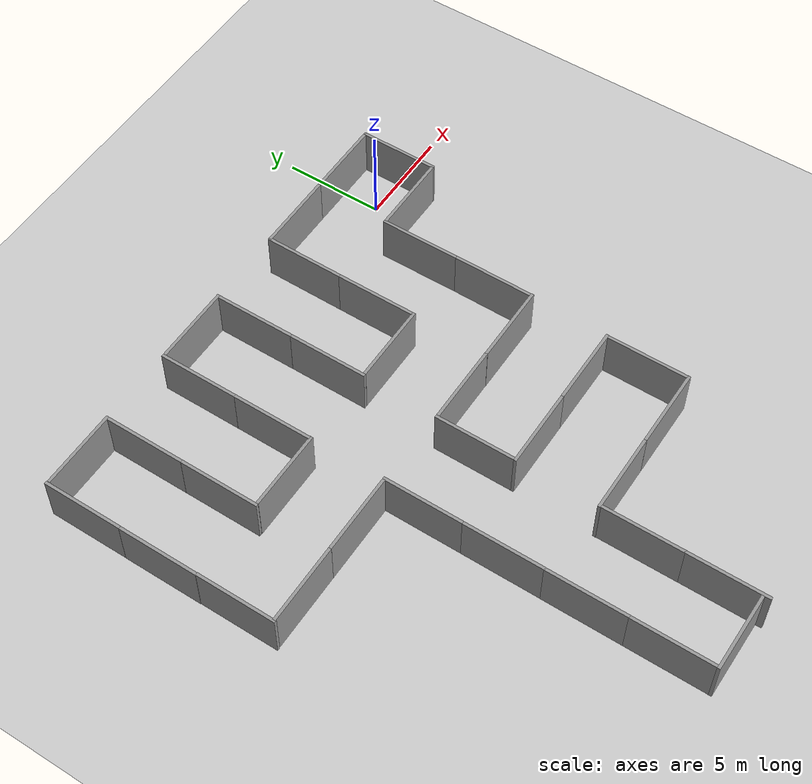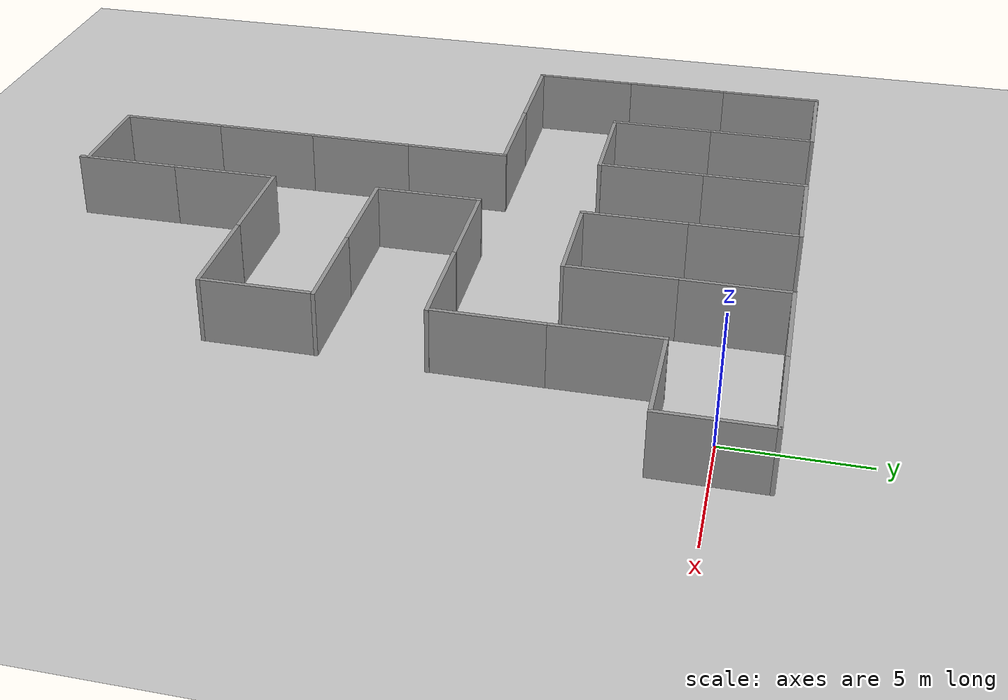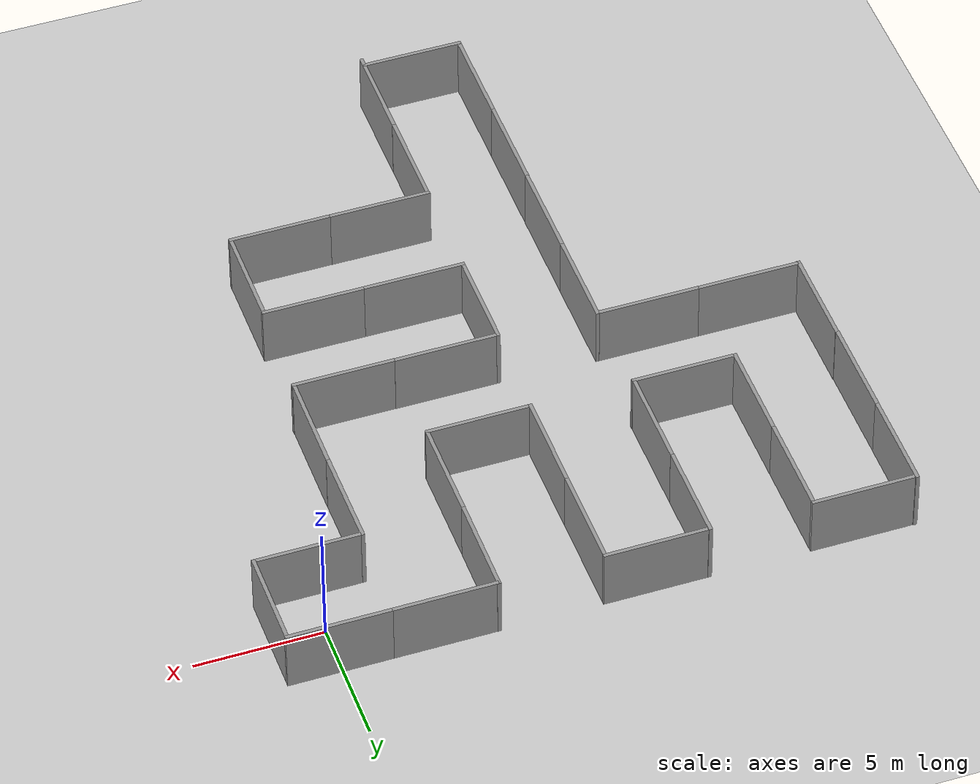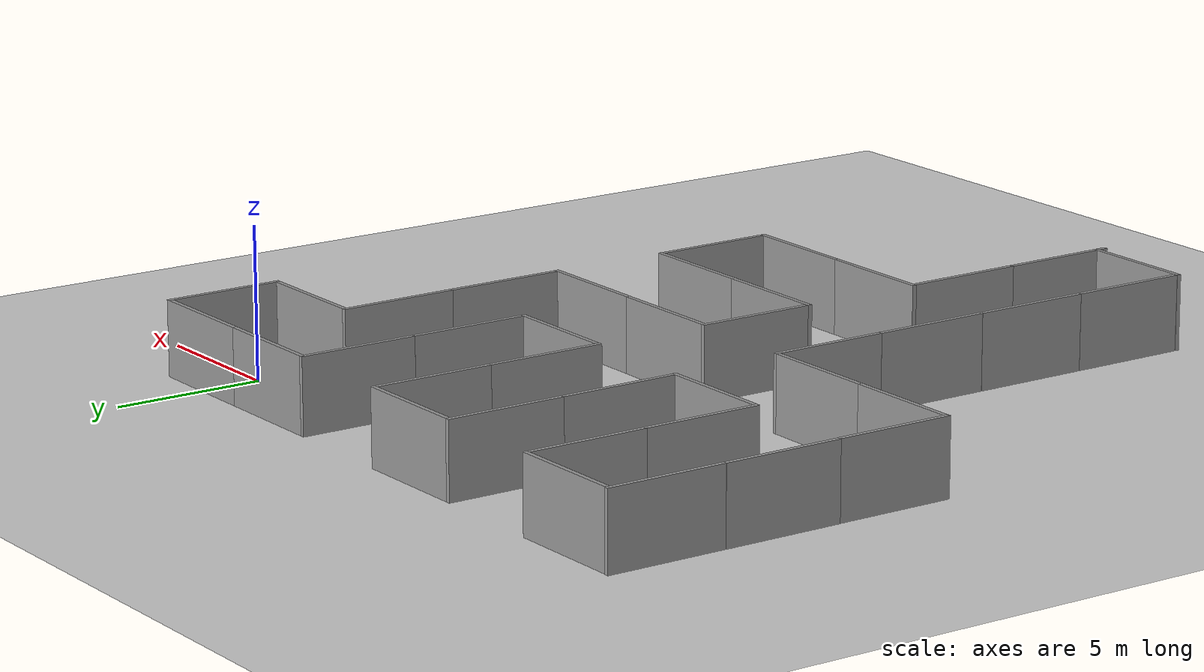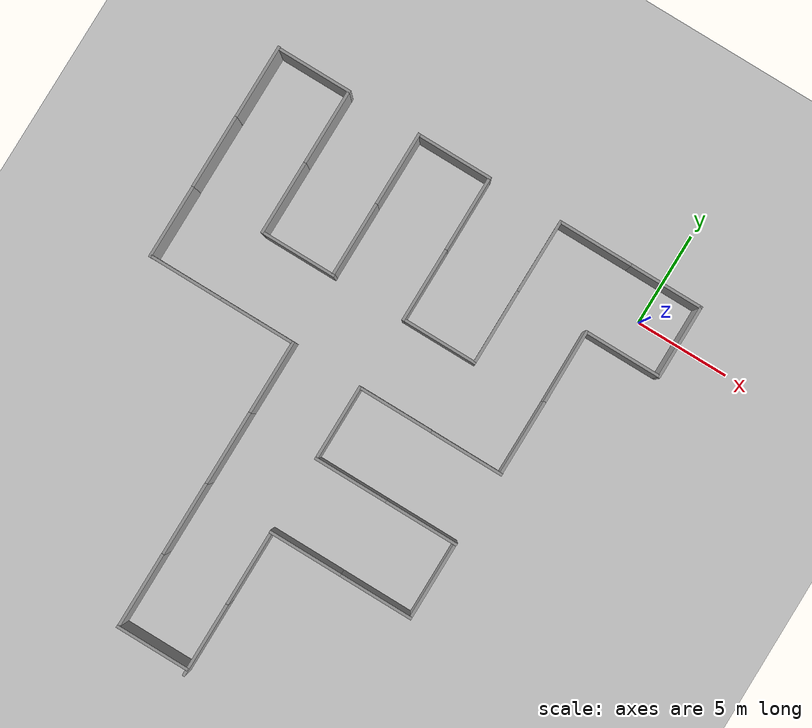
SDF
<sdf version="1.6">
 <world name="default">
  <light name="sun" type="directional">
   <pose>0 0 10 0 -0 0</pose>
   <diffuse>0.8 0.8 0.8 1</diffuse>
   <specular>0.2 0.2 0.2 1</specular>
   <attenuation>
    <range>1000</range>
    <constant>0.9</constant>
    <linear>0.01</linear>
    <quadratic>0.001</quadratic>
   </attenuation>
   <direction>-0.5 0.1 -0.9</direction>
  </light>
  <model name="ground_plane">
   <pose>0 0 0 0 0 -1.56912</pose>
   <static>1</static>
   <link name="link">
    <collision name="collision">
     <geometry><plane><normal>0 0 1</normal><size>100 100</size></plane></geometry>
     <surface>
      <contact><collide_bitmask>65535</collide_bitmask></contact>
      <friction><ode><mu>100</mu><mu2>50</mu2></ode></friction>
     </surface>
    </collision>
    <visual name="visual">
     <cast_shadows>0</cast_shadows>
     <geometry><plane><normal>0 0 1</normal><size>100 100</size></plane></geometry>
     <material>
      <script><uri>file://media/materials/scripts/gazebo.material</uri><name>Gazebo/Grey</name></script>
     </material>
    </visual>
   </link>
  </model>
  <gravity>0 0 -9.8</gravity>
  <magnetic_field>6e-06 2.3e-05 -4.2e-05</magnetic_field>
  <atmosphere type="adiabatic"/>
  <physics name="default_physics" default="0" type="ode">
   <max_step_size>0.001</max_step_size>
   <real_time_factor>1</real_time_factor>
   <real_time_update_rate>1000</real_time_update_rate>
  </physics>
  <scene><ambient>0.4 0.4 0.4 1</ambient><background>0.7 0.7 0.7 1</background><shadows>1</shadows></scene>
  <audio><device>default</device></audio>
  <spherical_coordinates>
   <surface_model>EARTH_WGS84</surface_model>
   <latitude_deg>0</latitude_deg>
   <longitude_deg>0</longitude_deg>
   <elevation>0</elevation>
   <heading_deg>0</heading_deg>
  </spherical_coordinates>
  <model name="Y">
   <pose>-0.025508 -1.94415 0 0 -0 0</pose>
   <link name="Wall_0">
    <collision name="Wall_0_Collision">
     <geometry><box><size>4 0.15 2.5</size></box></geometry>
     <pose>0 0 1.25 0 -0 0</pose>
    </collision>
    <visual name="Wall_0_Visual">
     <pose>0 0 1.25 0 -0 0</pose>
     <geometry><box><size>4 0.15 2.5</size></box></geometry>
     <material>
      <script><uri>file://media/materials/scripts/gazebo.material</uri><name>Gazebo/Grey</name></script>
      <ambient>1 1 1 1</ambient>
     </material>
     <meta><layer>0</layer></meta>
    </visual>
   </link>
   <static>1</static>
  </model>
  <model name="Y_0">
   <pose>2.00538 -0.018061 0 0 -0 1.57462</pose>
   <link name="Wall_0">
    <collision name="Wall_0_Collision">
     <geometry><box><size>4 0.15 2.5</size></box></geometry>
     <pose>0 0 1.25 0 -0 0</pose>
    </collision>
    <visual name="Wall_0_Visual">
     <pose>0 0 1.25 0 -0 0</pose>
     <geometry><box><size>4 0.15 2.5</size></box></geometry>
     <material>
      <script><uri>file://media/materials/scripts/gazebo.material</uri><name>Gazebo/Grey</name></script>
      <ambient>1 1 1 1</ambient>
     </material>
     <meta><layer>0</layer></meta>
    </visual>
   </link>
   <static>1</static>
  </model>
  <model name="Y_1">
   <pose>0.076105 1.93775 0 0 -0 0</pose>
   <link name="Wall_0">
    <collision name="Wall_0_Collision">
     <geometry><box><size>4 0.15 2.5</size></box></geometry>
     <pose>0 0 1.25 0 -0 0</pose>
    </collision>
    <visual name="Wall_0_Visual">
     <pose>0 0 1.25 0 -0 0</pose>
     <geometry><box><size>4 0.15 2.5</size></box></geometry>
     <material>
      <script><uri>file://media/materials/scripts/gazebo.material</uri><name>Gazebo/Grey</name></script>
      <ambient>1 1 1 1</ambient>
     </material>
     <meta><layer>0</layer></meta>
    </visual>
   </link>
   <static>1</static>
  </model>
  <model name="Y_2">
   <pose>-3.91376 1.93732 0 0 -0 0</pose>
   <link name="Wall_0">
    <collision name="Wall_0_Collision">
     <geometry><box><size>4 0.15 2.5</size></box></geometry>
     <pose>0 0 1.25 0 -0 0</pose>
    </collision>
    <visual name="Wall_0_Visual">
     <pose>0 0 1.25 0 -0 0</pose>
     <geometry><box><size>4 0.15 2.5</size></box></geometry>
     <material>
      <script><uri>file://media/materials/scripts/gazebo.material</uri><name>Gazebo/Grey</name></script>
      <ambient>1 1 1 1</ambient>
     </material>
     <meta><layer>0</layer></meta>
    </visual>
   </link>
   <static>1</static>
  </model>
  <model name="Y_3">
   <pose>-2.06061 -3.86822 0 0 -0 1.57913</pose>
   <link name="Wall_0">
    <collision name="Wall_0_Collision">
     <geometry><box><size>4 0.15 2.5</size></box></geometry>
     <pose>0 0 1.25 0 -0 0</pose>
    </collision>
    <visual name="Wall_0_Visual">
     <pose>0 0 1.25 0 -0 0</pose>
     <geometry><box><size>4 0.15 2.5</size></box></geometry>
     <material>
      <script><uri>file://media/materials/scripts/gazebo.material</uri><name>Gazebo/Grey</name></script>
      <ambient>1 1 1 1</ambient>
     </material>
     <meta><layer>0</layer></meta>
    </visual>
   </link>
   <static>1</static>
  </model>
  <model name="Y_4">
   <pose>-2.04239 -7.85799 0 0 -0 1.56991</pose>
   <link name="Wall_0">
    <collision name="Wall_0_Collision">
     <geometry><box><size>4 0.15 2.5</size></box></geometry>
     <pose>0 0 1.25 0 -0 0</pose>
    </collision>
    <visual name="Wall_0_Visual">
     <pose>0 0 1.25 0 -0 0</pose>
     <geometry><box><size>4 0.15 2.5</size></box></geometry>
     <material>
      <script><uri>file://media/materials/scripts/gazebo.material</uri><name>Gazebo/Grey</name></script>
      <ambient>1 1 1 1</ambient>
     </material>
     <meta><layer>0</layer></meta>
    </visual>
   </link>
   <static>1</static>
  </model>
  <model name="Y_5">
   <pose>-3.95318 -9.92776 0 0 -0 0</pose>
   <link name="Wall_0">
    <collision name="Wall_0_Collision">
     <geometry><box><size>4 0.15 2.5</size></box></geometry>
     <pose>0 0 1.25 0 -0 0</pose>
    </collision>
    <visual name="Wall_0_Visual">
     <pose>0 0 1.25 0 -0 0</pose>
     <geometry><box><size>4 0.15 2.5</size></box></geometry>
     <material>
      <script><uri>file://media/materials/scripts/gazebo.material</uri><name>Gazebo/Grey</name></script>
      <ambient>1 1 1 1</ambient>
     </material>
     <meta><layer>0</layer></meta>
    </visual>
   </link>
   <static>1</static>
  </model>
  <model name="Y_6">
   <pose>-5.91089 0.016684 0 0 -0 1.56963</pose>
   <link name="Wall_0">
    <collision name="Wall_0_Collision">
     <geometry><box><size>4 0.15 2.5</size></box></geometry>
     <pose>0 0 1.25 0 -0 0</pose>
    </collision>
    <visual name="Wall_0_Visual">
     <pose>0 0 1.25 0 -0 0</pose>
     <geometry><box><size>4 0.15 2.5</size></box></geometry>
     <material>
      <script><uri>file://media/materials/scripts/gazebo.material</uri><name>Gazebo/Grey</name></script>
      <ambient>1 1 1 1</ambient>
     </material>
     <meta><layer>0</layer></meta>
    </visual>
   </link>
   <static>1</static>
  </model>
  <model name="Y_7">
   <pose>-5.90785 -3.97955 0 0 -0 1.57405</pose>
   <link name="Wall_0">
    <collision name="Wall_0_Collision">
     <geometry><box><size>4 0.15 2.5</size></box></geometry>
     <pose>0 0 1.25 0 -0 0</pose>
    </collision>
    <visual name="Wall_0_Visual">
     <pose>0 0 1.25 0 -0 0</pose>
     <geometry><box><size>4 0.15 2.5</size></box></geometry>
     <material>
      <script><uri>file://media/materials/scripts/gazebo.material</uri><name>Gazebo/Grey</name></script>
      <ambient>1 1 1 1</ambient>
     </material>
     <meta><layer>0</layer></meta>
    </visual>
   </link>
   <static>1</static>
  </model>
  <model name="Y_8">
   <pose>-7.83014 -6.01942 0 0 -0 0</pose>
   <link name="Wall_0">
    <collision name="Wall_0_Collision">
     <geometry><box><size>4 0.15 2.5</size></box></geometry>
     <pose>0 0 1.25 0 -0 0</pose>
    </collision>
    <visual name="Wall_0_Visual">
     <pose>0 0 1.25 0 -0 0</pose>
     <geometry><box><size>4 0.15 2.5</size></box></geometry>
     <material>
      <script><uri>file://media/materials/scripts/gazebo.material</uri><name>Gazebo/Grey</name></script>
      <ambient>1 1 1 1</ambient>
     </material>
     <meta><layer>0</layer></meta>
    </visual>
   </link>
   <static>1</static>
  </model>
  <model name="Y_9">
   <pose>-7.9297 -9.92021 0 0 -0 0</pose>
   <link name="Wall_0">
    <collision name="Wall_0_Collision">
     <geometry><box><size>4 0.15 2.5</size></box></geometry>
     <pose>0 0 1.25 0 -0 0</pose>
    </collision>
    <visual name="Wall_0_Visual">
     <pose>0 0 1.25 0 -0 0</pose>
     <geometry><box><size>4 0.15 2.5</size></box></geometry>
     <material>
      <script><uri>file://media/materials/scripts/gazebo.material</uri><name>Gazebo/Grey</name></script>
      <ambient>1 1 1 1</ambient>
     </material>
     <meta><layer>0</layer></meta>
    </visual>
   </link>
   <static>1</static>
  </model>
  <model name="Y_10">
   <pose>-9.91101 -4.09349 0 0 0 -1.56912</pose>
   <link name="Wall_0">
    <collision name="Wall_0_Collision">
     <geometry><box><size>4 0.15 2.5</size></box></geometry>
     <pose>0 0 1.25 0 -0 0</pose>
    </collision>
    <visual name="Wall_0_Visual">
     <pose>0 0 1.25 0 -0 0</pose>
     <geometry><box><size>4 0.15 2.5</size></box></geometry>
     <material>
      <script><uri>file://media/materials/scripts/gazebo.material</uri><name>Gazebo/Grey</name></script>
      <ambient>1 1 1 1</ambient>
     </material>
     <meta><layer>0</layer></meta>
    </visual>
   </link>
   <static>1</static>
  </model>
  <model name="Y_11">
   <pose>-9.92476 -0.101321 0 0 -0 1.57507</pose>
   <link name="Wall_0">
    <collision name="Wall_0_Collision">
     <geometry><box><size>4 0.15 2.5</size></box></geometry>
     <pose>0 0 1.25 0 -0 0</pose>
    </collision>
    <visual name="Wall_0_Visual">
     <pose>0 0 1.25 0 -0 0</pose>
     <geometry><box><size>4 0.15 2.5</size></box></geometry>
     <material>
      <script><uri>file://media/materials/scripts/gazebo.material</uri><name>Gazebo/Grey</name></script>
      <ambient>1 1 1 1</ambient>
     </material>
     <meta><layer>0</layer></meta>
    </visual>
   </link>
   <static>1</static>
  </model>
  <model name="Y_12">
   <pose>-11.8636 1.96453 0 0 -0 0</pose>
   <link name="Wall_0">
    <collision name="Wall_0_Collision">
     <geometry><box><size>4 0.15 2.5</size></box></geometry>
     <pose>0 0 1.25 0 -0 0</pose>
    </collision>
    <visual name="Wall_0_Visual">
     <pose>0 0 1.25 0 -0 0</pose>
     <geometry><box><size>4 0.15 2.5</size></box></geometry>
     <material>
      <script><uri>file://media/materials/scripts/gazebo.material</uri><name>Gazebo/Grey</name></script>
      <ambient>1 1 1 1</ambient>
     </material>
     <meta><layer>0</layer></meta>
    </visual>
   </link>
   <static>1</static>
  </model>
  <model name="Y_13">
   <pose>-13.9405 0.044504 0 0 0 -1.56912</pose>
   <link name="Wall_0">
    <collision name="Wall_0_Collision">
     <geometry><box><size>4 0.15 2.5</size></box></geometry>
     <pose>0 0 1.25 0 -0 0</pose>
    </collision>
    <visual name="Wall_0_Visual">
     <pose>0 0 1.25 0 -0 0</pose>
     <geometry><box><size>4 0.15 2.5</size></box></geometry>
     <material>
      <script><uri>file://media/materials/scripts/gazebo.material</uri><name>Gazebo/Grey</name></script>
      <ambient>1 1 1 1</ambient>
     </material>
     <meta><layer>0</layer></meta>
    </visual>
   </link>
   <static>1</static>
  </model>
  <model name="Y_14">
   <pose>-13.9321 -3.94824 0 0 0 -1.56912</pose>
   <link name="Wall_0">
    <collision name="Wall_0_Collision">
     <geometry><box><size>4 0.15 2.5</size></box></geometry>
     <pose>0 0 1.25 0 -0 0</pose>
    </collision>
    <visual name="Wall_0_Visual">
     <pose>0 0 1.25 0 -0 0</pose>
     <geometry><box><size>4 0.15 2.5</size></box></geometry>
     <material>
      <script><uri>file://media/materials/scripts/gazebo.material</uri><name>Gazebo/Grey</name></script>
      <ambient>1 1 1 1</ambient>
     </material>
     <meta><layer>0</layer></meta>
    </visual>
   </link>
   <static>1</static>
  </model>
  <model name="Y_15">
   <pose>-15.8399 -5.9871 0 0 -0 0</pose>
   <link name="Wall_0">
    <collision name="Wall_0_Collision">
     <geometry><box><size>4 0.15 2.5</size></box></geometry>
     <pose>0 0 1.25 0 -0 0</pose>
    </collision>
    <visual name="Wall_0_Visual">
     <pose>0 0 1.25 0 -0 0</pose>
     <geometry><box><size>4 0.15 2.5</size></box></geometry>
     <material>
      <script><uri>file://media/materials/scripts/gazebo.material</uri><name>Gazebo/Grey</name></script>
      <ambient>1 1 1 1</ambient>
     </material>
     <meta><layer>0</layer></meta>
    </visual>
   </link>
   <static>1</static>
  </model>
  <model name="Y_16">
   <pose>-17.9082 -4.05336 0 0 0 -1.56912</pose>
   <link name="Wall_0">
    <collision name="Wall_0_Collision">
     <geometry><box><size>4 0.15 2.5</size></box></geometry>
     <pose>0 0 1.25 0 -0 0</pose>
    </collision>
    <visual name="Wall_0_Visual">
     <pose>0 0 1.25 0 -0 0</pose>
     <geometry><box><size>4 0.15 2.5</size></box></geometry>
     <material>
      <script><uri>file://media/materials/scripts/gazebo.material</uri><name>Gazebo/Grey</name></script>
      <ambient>1 1 1 1</ambient>
     </material>
     <meta><layer>0</layer></meta>
    </visual>
   </link>
   <static>1</static>
  </model>
  <model name="Y_17">
   <pose>-17.9158 -0.065441 0 0 0 -1.56912</pose>
   <link name="Wall_0">
    <collision name="Wall_0_Collision">
     <geometry><box><size>4 0.15 2.5</size></box></geometry>
     <pose>0 0 1.25 0 -0 0</pose>
    </collision>
    <visual name="Wall_0_Visual">
     <pose>0 0 1.25 0 -0 0</pose>
     <geometry><box><size>4 0.15 2.5</size></box></geometry>
     <material>
      <script><uri>file://media/materials/scripts/gazebo.material</uri><name>Gazebo/Grey</name></script>
      <ambient>1 1 1 1</ambient>
     </material>
     <meta><layer>0</layer></meta>
    </visual>
   </link>
   <static>1</static>
  </model>
  <model name="Y_18">
   <pose>-19.8436 2.00016 0 0 -0 0</pose>
   <link name="Wall_0">
    <collision name="Wall_0_Collision">
     <geometry><box><size>4 0.15 2.5</size></box></geometry>
     <pose>0 0 1.25 0 -0 0</pose>
    </collision>
    <visual name="Wall_0_Visual">
     <pose>0 0 1.25 0 -0 0</pose>
     <geometry><box><size>4 0.15 2.5</size></box></geometry>
     <material>
      <script><uri>file://media/materials/scripts/gazebo.material</uri><name>Gazebo/Grey</name></script>
      <ambient>1 1 1 1</ambient>
     </material>
     <meta><layer>0</layer></meta>
    </visual>
   </link>
   <static>1</static>
  </model>
  <model name="Y_19">
   <pose>-19.8745 -9.77499 0 0 -0 0</pose>
   <link name="Wall_0">
    <collision name="Wall_0_Collision">
     <geometry><box><size>4 0.15 2.5</size></box></geometry>
     <pose>0 0 1.25 0 -0 0</pose>
    </collision>
    <visual name="Wall_0_Visual">
     <pose>0 0 1.25 0 -0 0</pose>
     <geometry><box><size>4 0.15 2.5</size></box></geometry>
     <material>
      <script><uri>file://media/materials/scripts/gazebo.material</uri><name>Gazebo/Grey</name></script>
      <ambient>1 1 1 1</ambient>
     </material>
     <meta><layer>0</layer></meta>
    </visual>
   </link>
   <static>1</static>
  </model>
  <model name="Y_20">
   <pose>-21.9246 0.100817 0 0 0 -1.56912</pose>
   <link name="Wall_0">
    <collision name="Wall_0_Collision">
     <geometry><box><size>4 0.15 2.5</size></box></geometry>
     <pose>0 0 1.25 0 -0 0</pose>
    </collision>
    <visual name="Wall_0_Visual">
     <pose>0 0 1.25 0 -0 0</pose>
     <geometry><box><size>4 0.15 2.5</size></box></geometry>
     <material>
      <script><uri>file://media/materials/scripts/gazebo.material</uri><name>Gazebo/Grey</name></script>
      <ambient>1 1 1 1</ambient>
     </material>
     <meta><layer>0</layer></meta>
    </visual>
   </link>
   <static>1</static>
  </model>
  <model name="Y_21">
   <pose>-21.9246 -3.89502 0 0 0 -1.56912</pose>
   <link name="Wall_0">
    <collision name="Wall_0_Collision">
     <geometry><box><size>4 0.15 2.5</size></box></geometry>
     <pose>0 0 1.25 0 -0 0</pose>
    </collision>
    <visual name="Wall_0_Visual">
     <pose>0 0 1.25 0 -0 0</pose>
     <geometry><box><size>4 0.15 2.5</size></box></geometry>
     <material>
      <script><uri>file://media/materials/scripts/gazebo.material</uri><name>Gazebo/Grey</name></script>
      <ambient>1 1 1 1</ambient>
     </material>
     <meta><layer>0</layer></meta>
    </visual>
   </link>
   <static>1</static>
  </model>
  <model name="Y_23">
   <pose>-21.9044 -7.86349 0 0 0 -1.56912</pose>
   <link name="Wall_0">
    <collision name="Wall_0_Collision">
     <geometry><box><size>4 0.15 2.5</size></box></geometry>
     <pose>0 0 1.25 0 -0 0</pose>
    </collision>
    <visual name="Wall_0_Visual">
     <pose>0 0 1.25 0 -0 0</pose>
     <geometry><box><size>4 0.15 2.5</size></box></geometry>
     <material>
      <script><uri>file://media/materials/scripts/gazebo.material</uri><name>Gazebo/Grey</name></script>
      <ambient>1 1 1 1</ambient>
     </material>
     <meta><layer>0</layer></meta>
    </visual>
   </link>
   <static>1</static>
  </model>
  <model name="Y_22">
   <pose>-15.9159 -9.77548 0 0 -0 0</pose>
   <link name="Wall_0">
    <collision name="Wall_0_Collision">
     <geometry><box><size>4 0.15 2.5</size></box></geometry>
     <pose>0 0 1.25 0 -0 0</pose>
    </collision>
    <visual name="Wall_0_Visual">
     <pose>0 0 1.25 0 -0 0</pose>
     <geometry><box><size>4 0.15 2.5</size></box></geometry>
     <material>
      <script><uri>file://media/materials/scripts/gazebo.material</uri><name>Gazebo/Grey</name></script>
      <ambient>1 1 1 1</ambient>
     </material>
     <meta><layer>0</layer></meta>
    </visual>
   </link>
   <static>1</static>
  </model>
  <model name="Y_24">
   <pose>-9.98168 -11.8441 0 0 0 -1.56912</pose>
   <link name="Wall_0">
    <collision name="Wall_0_Collision">
     <geometry><box><size>4 0.15 2.5</size></box></geometry>
     <pose>0 0 1.25 0 -0 0</pose>
    </collision>
    <visual name="Wall_0_Visual">
     <pose>0 0 1.25 0 -0 0</pose>
     <geometry><box><size>4 0.15 2.5</size></box></geometry>
     <material>
      <script><uri>file://media/materials/scripts/gazebo.material</uri><name>Gazebo/Grey</name></script>
      <ambient>1 1 1 1</ambient>
     </material>
     <meta><layer>0</layer></meta>
    </visual>
   </link>
   <static>1</static>
  </model>
  <model name="Y_25">
   <pose>-13.8547 -11.7025 0 0 0 -1.56912</pose>
   <link name="Wall_0">
    <collision name="Wall_0_Collision">
     <geometry><box><size>4 0.15 2.5</size></box></geometry>
     <pose>0 0 1.25 0 -0 0</pose>
    </collision>
    <visual name="Wall_0_Visual">
     <pose>0 0 1.25 0 -0 0</pose>
     <geometry><box><size>4 0.15 2.5</size></box></geometry>
     <material>
      <script><uri>file://media/materials/scripts/gazebo.material</uri><name>Gazebo/Grey</name></script>
      <ambient>1 1 1 1</ambient>
     </material>
     <meta><layer>0</layer></meta>
    </visual>
   </link>
   <static>1</static>
  </model>
  <model name="Y_26">
   <pose>-8.05241 -13.9177 0 0 -0 0</pose>
   <link name="Wall_0">
    <collision name="Wall_0_Collision">
     <geometry><box><size>4 0.15 2.5</size></box></geometry>
     <pose>0 0 1.25 0 -0 0</pose>
    </collision>
    <visual name="Wall_0_Visual">
     <pose>0 0 1.25 0 -0 0</pose>
     <geometry><box><size>4 0.15 2.5</size></box></geometry>
     <material>
      <script><uri>file://media/materials/scripts/gazebo.material</uri><name>Gazebo/Grey</name></script>
      <ambient>1 1 1 1</ambient>
     </material>
     <meta><layer>0</layer></meta>
    </visual>
   </link>
   <static>1</static>
  </model>
  <model name="Y_27">
   <pose>-4.06253 -13.918 0 0 -0 0</pose>
   <link name="Wall_0">
    <collision name="Wall_0_Collision">
     <geometry><box><size>4 0.15 2.5</size></box></geometry>
     <pose>0 0 1.25 0 -0 0</pose>
    </collision>
    <visual name="Wall_0_Visual">
     <pose>0 0 1.25 0 -0 0</pose>
     <geometry><box><size>4 0.15 2.5</size></box></geometry>
     <material>
      <script><uri>file://media/materials/scripts/gazebo.material</uri><name>Gazebo/Grey</name></script>
      <ambient>1 1 1 1</ambient>
     </material>
     <meta><layer>0</layer></meta>
    </visual>
   </link>
   <static>1</static>
  </model>
  <model name="Y_28">
   <pose>-2.14282 -15.9949 0 0 0 -1.56912</pose>
   <link name="Wall_0">
    <collision name="Wall_0_Collision">
     <geometry><box><size>4 0.15 2.5</size></box></geometry>
     <pose>0 0 1.25 0 -0 0</pose>
    </collision>
    <visual name="Wall_0_Visual">
     <pose>0 0 1.25 0 -0 0</pose>
     <geometry><box><size>4 0.15 2.5</size></box></geometry>
     <material>
      <script><uri>file://media/materials/scripts/gazebo.material</uri><name>Gazebo/Grey</name></script>
      <ambient>1 1 1 1</ambient>
     </material>
     <meta><layer>0</layer></meta>
    </visual>
   </link>
   <static>1</static>
  </model>
  <model name="Y_29">
   <pose>-4.06243 -18.0552 0 0 -0 0</pose>
   <link name="Wall_0">
    <collision name="Wall_0_Collision">
     <geometry><box><size>4 0.15 2.5</size></box></geometry>
     <pose>0 0 1.25 0 -0 0</pose>
    </collision>
    <visual name="Wall_0_Visual">
     <pose>0 0 1.25 0 -0 0</pose>
     <geometry><box><size>4 0.15 2.5</size></box></geometry>
     <material>
      <script><uri>file://media/materials/scripts/gazebo.material</uri><name>Gazebo/Grey</name></script>
      <ambient>1 1 1 1</ambient>
     </material>
     <meta><layer>0</layer></meta>
    </visual>
   </link>
   <static>1</static>
  </model>
  <model name="Y_30">
   <pose>-8.06212 -18.0523 0 0 -0 0</pose>
   <link name="Wall_0">
    <collision name="Wall_0_Collision">
     <geometry><box><size>4 0.15 2.5</size></box></geometry>
     <pose>0 0 1.25 0 -0 0</pose>
    </collision>
    <visual name="Wall_0_Visual">
     <pose>0 0 1.25 0 -0 0</pose>
     <geometry><box><size>4 0.15 2.5</size></box></geometry>
     <material>
      <script><uri>file://media/materials/scripts/gazebo.material</uri><name>Gazebo/Grey</name></script>
      <ambient>1 1 1 1</ambient>
     </material>
     <meta><layer>0</layer></meta>
    </visual>
   </link>
   <static>1</static>
  </model>
  <model name="Y_31">
   <pose>-13.8506 -15.6979 0 0 0 -1.56912</pose>
   <link name="Wall_0">
    <collision name="Wall_0_Collision">
     <geometry><box><size>4 0.15 2.5</size></box></geometry>
     <pose>0 0 1.25 0 -0 0</pose>
    </collision>
    <visual name="Wall_0_Visual">
     <pose>0 0 1.25 0 -0 0</pose>
     <geometry><box><size>4 0.15 2.5</size></box></geometry>
     <material>
      <script><uri>file://media/materials/scripts/gazebo.material</uri><name>Gazebo/Grey</name></script>
      <ambient>1 1 1 1</ambient>
     </material>
     <meta><layer>0</layer></meta>
    </visual>
   </link>
   <static>1</static>
  </model>
  <model name="Y_32">
   <pose>-9.9687 -20.1177 0 0 0 -1.56912</pose>
   <link name="Wall_0">
    <collision name="Wall_0_Collision">
     <geometry><box><size>4 0.15 2.5</size></box></geometry>
     <pose>0 0 1.25 0 -0 0</pose>
    </collision>
    <visual name="Wall_0_Visual">
     <pose>0 0 1.25 0 -0 0</pose>
     <geometry><box><size>4 0.15 2.5</size></box></geometry>
     <material>
      <script><uri>file://media/materials/scripts/gazebo.material</uri><name>Gazebo/Grey</name></script>
      <ambient>1 1 1 1</ambient>
     </material>
     <meta><layer>0</layer></meta>
    </visual>
   </link>
   <static>1</static>
  </model>
  <model name="Y_33">
   <pose>-9.95991 -24.0765 0 0 0 -1.56912</pose>
   <link name="Wall_0">
    <collision name="Wall_0_Collision">
     <geometry><box><size>4 0.15 2.5</size></box></geometry>
     <pose>0 0 1.25 0 -0 0</pose>
    </collision>
    <visual name="Wall_0_Visual">
     <pose>0 0 1.25 0 -0 0</pose>
     <geometry><box><size>4 0.15 2.5</size></box></geometry>
     <material>
      <script><uri>file://media/materials/scripts/gazebo.material</uri><name>Gazebo/Grey</name></script>
      <ambient>1 1 1 1</ambient>
     </material>
     <meta><layer>0</layer></meta>
    </visual>
   </link>
   <static>1</static>
  </model>
  <model name="Y_34">
   <pose>-13.8491 -19.6538 0 0 0 -1.56912</pose>
   <link name="Wall_0">
    <collision name="Wall_0_Collision">
     <geometry><box><size>4 0.15 2.5</size></box></geometry>
     <pose>0 0 1.25 0 -0 0</pose>
    </collision>
    <visual name="Wall_0_Visual">
     <pose>0 0 1.25 0 -0 0</pose>
     <geometry><box><size>4 0.15 2.5</size></box></geometry>
     <material>
      <script><uri>file://media/materials/scripts/gazebo.material</uri><name>Gazebo/Grey</name></script>
      <ambient>1 1 1 1</ambient>
     </material>
     <meta><layer>0</layer></meta>
    </visual>
   </link>
   <static>1</static>
  </model>
  <model name="Y_35">
   <pose>-13.846 -23.6323 0 0 0 -1.56912</pose>
   <link name="Wall_0">
    <collision name="Wall_0_Collision">
     <geometry><box><size>4 0.15 2.5</size></box></geometry>
     <pose>0 0 1.25 0 -0 0</pose>
    </collision>
    <visual name="Wall_0_Visual">
     <pose>0 0 1.25 0 -0 0</pose>
     <geometry><box><size>4 0.15 2.5</size></box></geometry>
     <material>
      <script><uri>file://media/materials/scripts/gazebo.material</uri><name>Gazebo/Grey</name></script>
      <ambient>1 1 1 1</ambient>
     </material>
     <meta><layer>0</layer></meta>
    </visual>
   </link>
   <static>1</static>
  </model>
  <model name="Y_36">
   <pose>-11.9249 -25.7132 0 0 -0 0</pose>
   <link name="Wall_0">
    <collision name="Wall_0_Collision">
     <geometry><box><size>4 0.15 2.5</size></box></geometry>
     <pose>0 0 1.25 0 -0 0</pose>
    </collision>
    <visual name="Wall_0_Visual">
     <pose>0 0 1.25 0 -0 0</pose>
     <geometry><box><size>4 0.15 2.5</size></box></geometry>
     <material>
      <script><uri>file://media/materials/scripts/gazebo.material</uri><name>Gazebo/Grey</name></script>
      <ambient>1 1 1 1</ambient>
     </material>
     <meta><layer>0</layer></meta>
    </visual>
   </link>
   <static>1</static>
  </model>
 </world>
</sdf>
